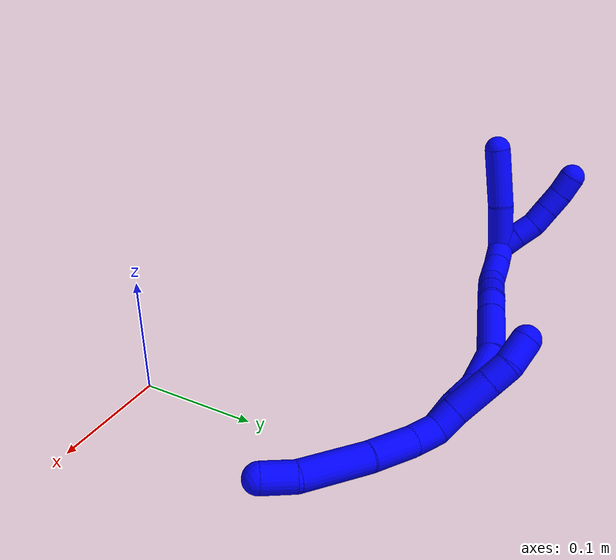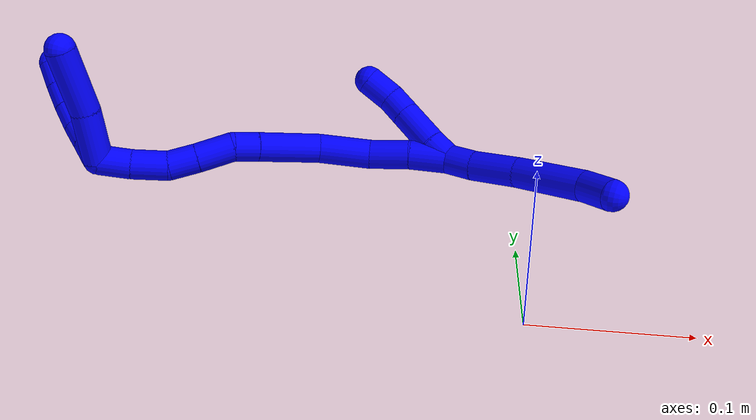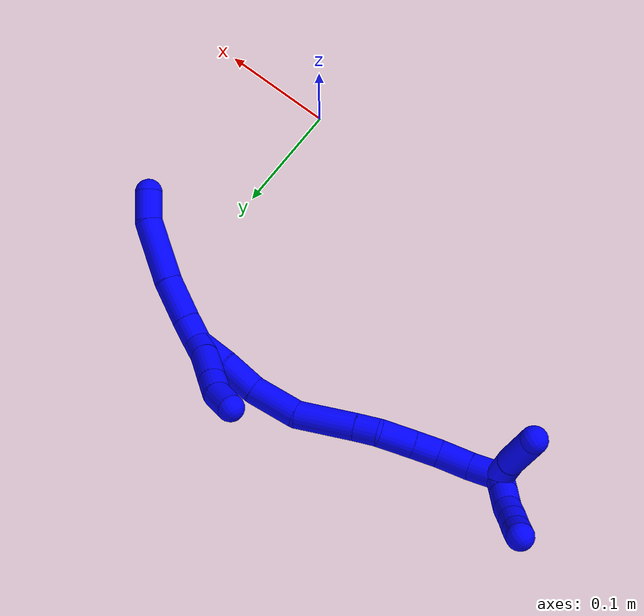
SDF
<sdf version="1.7">
 <world name="default">
  <model name="1">
   <static>0</static>
   <link name="1">
    <collision name="collision-cylinder-e_1_2_8">
     <pose>-0.000603 -5.9e-05 -0.012209 3.13675 -0.049349 -2.94613</pose>
     <geometry><cylinder><radius>0.0125</radius><length>0.024447</length></cylinder></geometry>
     <surface>
      <friction><ode><mu>1.16</mu><mu2>1.16</mu2><slip1>0</slip1><slip2>0</slip2></ode></friction>
      <contact><ode><kp>1e+06</kp><kd>1</kd><max_vel>0</max_vel><min_depth>0.001</min_depth></ode></contact>
     </surface>
    </collision>
    <visual name="visual-cylinder-e_1_2_8">
     <pose>-0.000603 -5.9e-05 -0.012209 3.13675 -0.049349 -2.94613</pose>
     <geometry><cylinder><radius>0.0125</radius><length>0.024447</length></cylinder></geometry>
     <material><ambient>0 0 1 1</ambient></material>
    </visual>
    <collision name="collision-cylinder-e_2_8_9">
     <pose>-0.002507 -0.002538 -0.043942 3.0183 -0.066039 -0.982697</pose>
     <geometry><cylinder><radius>0.0125</radius><length>0.039435</length></cylinder></geometry>
     <surface>
      <friction><ode><mu>1.16</mu><mu2>1.16</mu2><slip1>0</slip1><slip2>0</slip2></ode></friction>
      <contact><ode><kp>1e+06</kp><kd>1</kd><max_vel>0</max_vel><min_depth>0.001</min_depth></ode></contact>
     </surface>
    </collision>
    <visual name="visual-cylinder-e_2_8_9">
     <pose>-0.002507 -0.002538 -0.043942 3.0183 -0.066039 -0.982697</pose>
     <geometry><cylinder><radius>0.0125</radius><length>0.039435</length></cylinder></geometry>
     <material><ambient>0 0 1 1</ambient></material>
    </visual>
    <collision name="collision-cylinder-e_3_9_10">
     <pose>-0.009109 -0.008553 -0.09205 3.01647 -0.181962 -1.93819</pose>
     <geometry><cylinder><radius>0.0125</radius><length>0.058582</length></cylinder></geometry>
     <surface>
      <friction><ode><mu>1.16</mu><mu2>1.16</mu2><slip1>0</slip1><slip2>0</slip2></ode></friction>
      <contact><ode><kp>1e+06</kp><kd>1</kd><max_vel>0</max_vel><min_depth>0.001</min_depth></ode></contact>
     </surface>
    </collision>
    <visual name="visual-cylinder-e_3_9_10">
     <pose>-0.009109 -0.008553 -0.09205 3.01647 -0.181962 -1.93819</pose>
     <geometry><cylinder><radius>0.0125</radius><length>0.058582</length></cylinder></geometry>
     <material><ambient>0 0 1 1</ambient></material>
    </visual>
    <collision name="collision-cylinder-e_4_10_6">
     <pose>-0.020778 -0.014212 -0.132662 2.97164 -0.480924 -2.47291</pose>
     <geometry><cylinder><radius>0.0125</radius><length>0.027536</length></cylinder></geometry>
     <surface>
      <friction><ode><mu>1.16</mu><mu2>1.16</mu2><slip1>0</slip1><slip2>0</slip2></ode></friction>
      <contact><ode><kp>1e+06</kp><kd>1</kd><max_vel>0</max_vel><min_depth>0.001</min_depth></ode></contact>
     </surface>
    </collision>
    <visual name="visual-cylinder-e_4_10_6">
     <pose>-0.020778 -0.014212 -0.132662 2.97164 -0.480924 -2.47291</pose>
     <geometry><cylinder><radius>0.0125</radius><length>0.027536</length></cylinder></geometry>
     <material><ambient>0 0 1 1</ambient></material>
    </visual>
    <collision name="collision-cylinder-e_1_2_11">
     <pose>0.001114 -0.005154 0.008678 0.535989 0.10989 0.030204</pose>
     <geometry><cylinder><radius>0.0125</radius><length>0.020309</length></cylinder></geometry>
     <surface>
      <friction><ode><mu>1.16</mu><mu2>1.16</mu2><slip1>0</slip1><slip2>0</slip2></ode></friction>
      <contact><ode><kp>1e+06</kp><kd>1</kd><max_vel>0</max_vel><min_depth>0.001</min_depth></ode></contact>
     </surface>
    </collision>
    <visual name="visual-cylinder-e_1_2_11">
     <pose>0.001114 -0.005154 0.008678 0.535989 0.10989 0.030204</pose>
     <geometry><cylinder><radius>0.0125</radius><length>0.020309</length></cylinder></geometry>
     <material><ambient>0 0 1 1</ambient></material>
    </visual>
    <collision name="collision-cylinder-e_2_11_12">
     <pose>0.006074 -0.018916 0.031913 0.533964 0.22365 0.061408</pose>
     <geometry><cylinder><radius>0.0125</radius><length>0.034688</length></cylinder></geometry>
     <surface>
      <friction><ode><mu>1.16</mu><mu2>1.16</mu2><slip1>0</slip1><slip2>0</slip2></ode></friction>
      <contact><ode><kp>1e+06</kp><kd>1</kd><max_vel>0</max_vel><min_depth>0.001</min_depth></ode></contact>
     </surface>
    </collision>
    <visual name="visual-cylinder-e_2_11_12">
     <pose>0.006074 -0.018916 0.031913 0.533964 0.22365 0.061408</pose>
     <geometry><cylinder><radius>0.0125</radius><length>0.034688</length></cylinder></geometry>
     <material><ambient>0 0 1 1</ambient></material>
    </visual>
    <collision name="collision-cylinder-e_3_12_13">
     <pose>0.012109 -0.032504 0.054896 0.533913 0.219929 0.060372</pose>
     <geometry><cylinder><radius>0.0125</radius><length>0.020058</length></cylinder></geometry>
     <surface>
      <friction><ode><mu>1.16</mu><mu2>1.16</mu2><slip1>0</slip1><slip2>0</slip2></ode></friction>
      <contact><ode><kp>1e+06</kp><kd>1</kd><max_vel>0</max_vel><min_depth>0.001</min_depth></ode></contact>
     </surface>
    </collision>
    <visual name="visual-cylinder-e_3_12_13">
     <pose>0.012109 -0.032504 0.054896 0.533913 0.219929 0.060372</pose>
     <geometry><cylinder><radius>0.0125</radius><length>0.020058</length></cylinder></geometry>
     <material><ambient>0 0 1 1</ambient></material>
    </visual>
    <collision name="collision-cylinder-e_4_13_5">
     <pose>0.013193 -0.043976 0.073915 0.549731 -0.08856 -0.024989</pose>
     <geometry><cylinder><radius>0.0125</radius><length>0.024946</length></cylinder></geometry>
     <surface>
      <friction><ode><mu>1.16</mu><mu2>1.16</mu2><slip1>0</slip1><slip2>0</slip2></ode></friction>
      <contact><ode><kp>1e+06</kp><kd>1</kd><max_vel>0</max_vel><min_depth>0.001</min_depth></ode></contact>
     </surface>
    </collision>
    <visual name="visual-cylinder-e_4_13_5">
     <pose>0.013193 -0.043976 0.073915 0.549731 -0.08856 -0.024989</pose>
     <geometry><cylinder><radius>0.0125</radius><length>0.024946</length></cylinder></geometry>
     <material><ambient>0 0 1 1</ambient></material>
    </visual>
    <collision name="collision-cylinder-e_1_2_14">
     <pose>-0.005904 -0.000468 0.01517 0.030828 -0.370967 -0.005785</pose>
     <geometry><cylinder><radius>0.0125</radius><length>0.032571</length></cylinder></geometry>
     <surface>
      <friction><ode><mu>1.16</mu><mu2>1.16</mu2><slip1>0</slip1><slip2>0</slip2></ode></friction>
      <contact><ode><kp>1e+06</kp><kd>1</kd><max_vel>0</max_vel><min_depth>0.001</min_depth></ode></contact>
     </surface>
    </collision>
    <visual name="visual-cylinder-e_1_2_14">
     <pose>-0.005904 -0.000468 0.01517 0.030828 -0.370967 -0.005785</pose>
     <geometry><cylinder><radius>0.0125</radius><length>0.032571</length></cylinder></geometry>
     <material><ambient>0 0 1 1</ambient></material>
    </visual>
    <collision name="collision-cylinder-e_2_14_15">
     <pose>-0.017346 0.000628 0.046356 -0.097348 -0.331502 0.016297</pose>
     <geometry><cylinder><radius>0.0125</radius><length>0.034036</length></cylinder></geometry>
     <surface>
      <friction><ode><mu>1.16</mu><mu2>1.16</mu2><slip1>0</slip1><slip2>0</slip2></ode></friction>
      <contact><ode><kp>1e+06</kp><kd>1</kd><max_vel>0</max_vel><min_depth>0.001</min_depth></ode></contact>
     </surface>
    </collision>
    <visual name="visual-cylinder-e_2_14_15">
     <pose>-0.017346 0.000628 0.046356 -0.097348 -0.331502 0.016297</pose>
     <geometry><cylinder><radius>0.0125</radius><length>0.034036</length></cylinder></geometry>
     <material><ambient>0 0 1 1</ambient></material>
    </visual>
    <collision name="collision-cylinder-e_3_15_16">
     <pose>-0.033292 0.000191 0.082086 0.101147 -0.483578 -0.024964</pose>
     <geometry><cylinder><radius>0.0125</radius><length>0.044764</length></cylinder></geometry>
     <surface>
      <friction><ode><mu>1.16</mu><mu2>1.16</mu2><slip1>0</slip1><slip2>0</slip2></ode></friction>
      <contact><ode><kp>1e+06</kp><kd>1</kd><max_vel>0</max_vel><min_depth>0.001</min_depth></ode></contact>
     </surface>
    </collision>
    <visual name="visual-cylinder-e_3_15_16">
     <pose>-0.033292 0.000191 0.082086 0.101147 -0.483578 -0.024964</pose>
     <geometry><cylinder><radius>0.0125</radius><length>0.044764</length></cylinder></geometry>
     <material><ambient>0 0 1 1</ambient></material>
    </visual>
    <collision name="collision-cylinder-e_4_16_17">
     <pose>-0.062824 -0.005114 0.120347 0.176335 -0.79293 -0.073978</pose>
     <geometry><cylinder><radius>0.0125</radius><length>0.053692</length></cylinder></geometry>
     <surface>
      <friction><ode><mu>1.16</mu><mu2>1.16</mu2><slip1>0</slip1><slip2>0</slip2></ode></friction>
      <contact><ode><kp>1e+06</kp><kd>1</kd><max_vel>0</max_vel><min_depth>0.001</min_depth></ode></contact>
     </surface>
    </collision>
    <visual name="visual-cylinder-e_4_16_17">
     <pose>-0.062824 -0.005114 0.120347 0.176335 -0.79293 -0.073978</pose>
     <geometry><cylinder><radius>0.0125</radius><length>0.053692</length></cylinder></geometry>
     <material><ambient>0 0 1 1</ambient></material>
    </visual>
    <collision name="collision-cylinder-e_5_17_18">
     <pose>-0.089278 -0.009493 0.14625 0.144993 -0.778344 -0.059546</pose>
     <geometry><cylinder><radius>0.0125</radius><length>0.020877</length></cylinder></geometry>
     <surface>
      <friction><ode><mu>1.16</mu><mu2>1.16</mu2><slip1>0</slip1><slip2>0</slip2></ode></friction>
      <contact><ode><kp>1e+06</kp><kd>1</kd><max_vel>0</max_vel><min_depth>0.001</min_depth></ode></contact>
     </surface>
    </collision>
    <visual name="visual-cylinder-e_5_17_18">
     <pose>-0.089278 -0.009493 0.14625 0.144993 -0.778344 -0.059546</pose>
     <geometry><cylinder><radius>0.0125</radius><length>0.020877</length></cylinder></geometry>
     <material><ambient>0 0 1 1</ambient></material>
    </visual>
    <collision name="collision-cylinder-e_6_18_19">
     <pose>-0.107775 -0.006874 0.16434 -0.331319 -0.77719 0.136688</pose>
     <geometry><cylinder><radius>0.0125</radius><length>0.031851</length></cylinder></geometry>
     <surface>
      <friction><ode><mu>1.16</mu><mu2>1.16</mu2><slip1>0</slip1><slip2>0</slip2></ode></friction>
      <contact><ode><kp>1e+06</kp><kd>1</kd><max_vel>0</max_vel><min_depth>0.001</min_depth></ode></contact>
     </surface>
    </collision>
    <visual name="visual-cylinder-e_6_18_19">
     <pose>-0.107775 -0.006874 0.16434 -0.331319 -0.77719 0.136688</pose>
     <geometry><cylinder><radius>0.0125</radius><length>0.031851</length></cylinder></geometry>
     <material><ambient>0 0 1 1</ambient></material>
    </visual>
    <collision name="collision-cylinder-e_7_19_20">
     <pose>-0.127422 -0.000816 0.183646 -0.269287 -0.761747 0.10838</pose>
     <geometry><cylinder><radius>0.0125</radius><length>0.024571</length></cylinder></geometry>
     <surface>
      <friction><ode><mu>1.16</mu><mu2>1.16</mu2><slip1>0</slip1><slip2>0</slip2></ode></friction>
      <contact><ode><kp>1e+06</kp><kd>1</kd><max_vel>0</max_vel><min_depth>0.001</min_depth></ode></contact>
     </surface>
    </collision>
    <visual name="visual-cylinder-e_7_19_20">
     <pose>-0.127422 -0.000816 0.183646 -0.269287 -0.761747 0.10838</pose>
     <geometry><cylinder><radius>0.0125</radius><length>0.024571</length></cylinder></geometry>
     <material><ambient>0 0 1 1</ambient></material>
    </visual>
    <collision name="collision-cylinder-e_8_20_21">
     <pose>-0.14491 0.00039 0.204557 0.093671 -0.628452 -0.030462</pose>
     <geometry><cylinder><radius>0.0125</radius><length>0.030648</length></cylinder></geometry>
     <surface>
      <friction><ode><mu>1.16</mu><mu2>1.16</mu2><slip1>0</slip1><slip2>0</slip2></ode></friction>
      <contact><ode><kp>1e+06</kp><kd>1</kd><max_vel>0</max_vel><min_depth>0.001</min_depth></ode></contact>
     </surface>
    </collision>
    <visual name="visual-cylinder-e_8_20_21">
     <pose>-0.14491 0.00039 0.204557 0.093671 -0.628452 -0.030462</pose>
     <geometry><cylinder><radius>0.0125</radius><length>0.030648</length></cylinder></geometry>
     <material><ambient>0 0 1 1</ambient></material>
    </visual>
    <collision name="collision-cylinder-e_9_21_1">
     <pose>-0.161946 -0.003341 0.227439 0.239263 -0.637013 -0.07923</pose>
     <geometry><cylinder><radius>0.0125</radius><length>0.02699</length></cylinder></geometry>
     <surface>
      <friction><ode><mu>1.16</mu><mu2>1.16</mu2><slip1>0</slip1><slip2>0</slip2></ode></friction>
      <contact><ode><kp>1e+06</kp><kd>1</kd><max_vel>0</max_vel><min_depth>0.001</min_depth></ode></contact>
     </surface>
    </collision>
    <visual name="visual-cylinder-e_9_21_1">
     <pose>-0.161946 -0.003341 0.227439 0.239263 -0.637013 -0.07923</pose>
     <geometry><cylinder><radius>0.0125</radius><length>0.02699</length></cylinder></geometry>
     <material><ambient>0 0 1 1</ambient></material>
    </visual>
    <collision name="collision-cylinder-e_1_1_22">
     <pose>-0.172299 -0.027846 0.239983 1.47965 -0.105193 -0.096032</pose>
     <geometry><cylinder><radius>0.0125</radius><length>0.044297</length></cylinder></geometry>
     <surface>
      <friction><ode><mu>1.16</mu><mu2>1.16</mu2><slip1>0</slip1><slip2>0</slip2></ode></friction>
      <contact><ode><kp>1e+06</kp><kd>1</kd><max_vel>0</max_vel><min_depth>0.001</min_depth></ode></contact>
     </surface>
    </collision>
    <visual name="visual-cylinder-e_1_1_22">
     <pose>-0.172299 -0.027846 0.239983 1.47965 -0.105193 -0.096032</pose>
     <geometry><cylinder><radius>0.0125</radius><length>0.044297</length></cylinder></geometry>
     <material><ambient>0 0 1 1</ambient></material>
    </visual>
    <collision name="collision-cylinder-e_2_22_4">
     <pose>-0.180827 -0.076702 0.245519 1.44039 -0.224601 -0.197258</pose>
     <geometry><cylinder><radius>0.0125</radius><length>0.055703</length></cylinder></geometry>
     <surface>
      <friction><ode><mu>1.16</mu><mu2>1.16</mu2><slip1>0</slip1><slip2>0</slip2></ode></friction>
      <contact><ode><kp>1e+06</kp><kd>1</kd><max_vel>0</max_vel><min_depth>0.001</min_depth></ode></contact>
     </surface>
    </collision>
    <visual name="visual-cylinder-e_2_22_4">
     <pose>-0.180827 -0.076702 0.245519 1.44039 -0.224601 -0.197258</pose>
     <geometry><cylinder><radius>0.0125</radius><length>0.055703</length></cylinder></geometry>
     <material><ambient>0 0 1 1</ambient></material>
    </visual>
    <collision name="collision-cylinder-e_1_1_23">
     <pose>-0.166672 -0.010874 0.246008 0.553555 0.336448 0.096411</pose>
     <geometry><cylinder><radius>0.0125</radius><length>0.02</length></cylinder></geometry>
     <surface>
      <friction><ode><mu>1.16</mu><mu2>1.16</mu2><slip1>0</slip1><slip2>0</slip2></ode></friction>
      <contact><ode><kp>1e+06</kp><kd>1</kd><max_vel>0</max_vel><min_depth>0.001</min_depth></ode></contact>
     </surface>
    </collision>
    <visual name="visual-cylinder-e_1_1_23">
     <pose>-0.166672 -0.010874 0.246008 0.553555 0.336448 0.096411</pose>
     <geometry><cylinder><radius>0.0125</radius><length>0.02</length></cylinder></geometry>
     <material><ambient>0 0 1 1</ambient></material>
    </visual>
    <collision name="collision-cylinder-e_2_23_24">
     <pose>-0.159939 -0.020411 0.262241 0.508676 0.350281 0.09194</pose>
     <geometry><cylinder><radius>0.0125</radius><length>0.02</length></cylinder></geometry>
     <surface>
      <friction><ode><mu>1.16</mu><mu2>1.16</mu2><slip1>0</slip1><slip2>0</slip2></ode></friction>
      <contact><ode><kp>1e+06</kp><kd>1</kd><max_vel>0</max_vel><min_depth>0.001</min_depth></ode></contact>
     </surface>
    </collision>
    <visual name="visual-cylinder-e_2_23_24">
     <pose>-0.159939 -0.020411 0.262241 0.508676 0.350281 0.09194</pose>
     <geometry><cylinder><radius>0.0125</radius><length>0.02</length></cylinder></geometry>
     <material><ambient>0 0 1 1</ambient></material>
    </visual>
    <collision name="collision-cylinder-e_3_24_25">
     <pose>-0.154234 -0.031975 0.277225 0.800557 0.229314 0.097378</pose>
     <geometry><cylinder><radius>0.0125</radius><length>0.02</length></cylinder></geometry>
     <surface>
      <friction><ode><mu>1.16</mu><mu2>1.16</mu2><slip1>0</slip1><slip2>0</slip2></ode></friction>
      <contact><ode><kp>1e+06</kp><kd>1</kd><max_vel>0</max_vel><min_depth>0.001</min_depth></ode></contact>
     </surface>
    </collision>
    <visual name="visual-cylinder-e_3_24_25">
     <pose>-0.154234 -0.031975 0.277225 0.800557 0.229314 0.097378</pose>
     <geometry><cylinder><radius>0.0125</radius><length>0.02</length></cylinder></geometry>
     <material><ambient>0 0 1 1</ambient></material>
    </visual>
    <collision name="collision-cylinder-e_4_25_26">
     <pose>-0.149319 -0.046146 0.290444 0.8399 0.267325 0.119936</pose>
     <geometry><cylinder><radius>0.0125</radius><length>0.02</length></cylinder></geometry>
     <surface>
      <friction><ode><mu>1.16</mu><mu2>1.16</mu2><slip1>0</slip1><slip2>0</slip2></ode></friction>
      <contact><ode><kp>1e+06</kp><kd>1</kd><max_vel>0</max_vel><min_depth>0.001</min_depth></ode></contact>
     </surface>
    </collision>
    <visual name="visual-cylinder-e_4_25_26">
     <pose>-0.149319 -0.046146 0.290444 0.8399 0.267325 0.119936</pose>
     <geometry><cylinder><radius>0.0125</radius><length>0.02</length></cylinder></geometry>
     <material><ambient>0 0 1 1</ambient></material>
    </visual>
    <collision name="collision-cylinder-e_5_26_3">
     <pose>-0.144455 -0.061402 0.302347 0.975894 0.224149 0.119327</pose>
     <geometry><cylinder><radius>0.0125</radius><length>0.02</length></cylinder></geometry>
     <surface>
      <friction><ode><mu>1.16</mu><mu2>1.16</mu2><slip1>0</slip1><slip2>0</slip2></ode></friction>
      <contact><ode><kp>1e+06</kp><kd>1</kd><max_vel>0</max_vel><min_depth>0.001</min_depth></ode></contact>
     </surface>
    </collision>
    <visual name="visual-cylinder-e_5_26_3">
     <pose>-0.144455 -0.061402 0.302347 0.975894 0.224149 0.119327</pose>
     <geometry><cylinder><radius>0.0125</radius><length>0.02</length></cylinder></geometry>
     <material><ambient>0 0 1 1</ambient></material>
    </visual>
    <collision name="collision-sphere-3">
     <pose>-0.142232 -0.069477 0.307811 0 -0 0</pose>
     <geometry><sphere><radius>0.0125</radius></sphere></geometry>
     <surface>
      <friction><ode><mu>1.16</mu><mu2>1.16</mu2><slip1>0</slip1><slip2>0</slip2></ode></friction>
      <contact><ode><kp>1e+06</kp><kd>1</kd><max_vel>0</max_vel><min_depth>0.001</min_depth></ode></contact>
     </surface>
    </collision>
    <visual name="visual-sphere-3">
     <pose>-0.142232 -0.069477 0.307811 0 -0 0</pose>
     <geometry><sphere><radius>0.0125</radius></sphere></geometry>
     <material><ambient>0 0 1 1</ambient></material>
    </visual>
    <collision name="collision-sphere-26">
     <pose>-0.146678 -0.053327 0.296883 0 -0 0</pose>
     <geometry><sphere><radius>0.0125</radius></sphere></geometry>
     <surface>
      <friction><ode><mu>1.16</mu><mu2>1.16</mu2><slip1>0</slip1><slip2>0</slip2></ode></friction>
      <contact><ode><kp>1e+06</kp><kd>1</kd><max_vel>0</max_vel><min_depth>0.001</min_depth></ode></contact>
     </surface>
    </collision>
    <visual name="visual-sphere-26">
     <pose>-0.146678 -0.053327 0.296883 0 -0 0</pose>
     <geometry><sphere><radius>0.0125</radius></sphere></geometry>
     <material><ambient>0 0 1 1</ambient></material>
    </visual>
    <collision name="collision-sphere-25">
     <pose>-0.151961 -0.038964 0.284006 0 -0 0</pose>
     <geometry><sphere><radius>0.0125</radius></sphere></geometry>
     <surface>
      <friction><ode><mu>1.16</mu><mu2>1.16</mu2><slip1>0</slip1><slip2>0</slip2></ode></friction>
      <contact><ode><kp>1e+06</kp><kd>1</kd><max_vel>0</max_vel><min_depth>0.001</min_depth></ode></contact>
     </surface>
    </collision>
    <visual name="visual-sphere-25">
     <pose>-0.151961 -0.038964 0.284006 0 -0 0</pose>
     <geometry><sphere><radius>0.0125</radius></sphere></geometry>
     <material><ambient>0 0 1 1</ambient></material>
    </visual>
    <collision name="collision-sphere-24">
     <pose>-0.156507 -0.024985 0.270444 0 -0 0</pose>
     <geometry><sphere><radius>0.0125</radius></sphere></geometry>
     <surface>
      <friction><ode><mu>1.16</mu><mu2>1.16</mu2><slip1>0</slip1><slip2>0</slip2></ode></friction>
      <contact><ode><kp>1e+06</kp><kd>1</kd><max_vel>0</max_vel><min_depth>0.001</min_depth></ode></contact>
     </surface>
    </collision>
    <visual name="visual-sphere-24">
     <pose>-0.156507 -0.024985 0.270444 0 -0 0</pose>
     <geometry><sphere><radius>0.0125</radius></sphere></geometry>
     <material><ambient>0 0 1 1</ambient></material>
    </visual>
    <collision name="collision-sphere-23">
     <pose>-0.16337 -0.015836 0.254037 0 -0 0</pose>
     <geometry><sphere><radius>0.0125</radius></sphere></geometry>
     <surface>
      <friction><ode><mu>1.16</mu><mu2>1.16</mu2><slip1>0</slip1><slip2>0</slip2></ode></friction>
      <contact><ode><kp>1e+06</kp><kd>1</kd><max_vel>0</max_vel><min_depth>0.001</min_depth></ode></contact>
     </surface>
    </collision>
    <visual name="visual-sphere-23">
     <pose>-0.16337 -0.015836 0.254037 0 -0 0</pose>
     <geometry><sphere><radius>0.0125</radius></sphere></geometry>
     <material><ambient>0 0 1 1</ambient></material>
    </visual>
    <collision name="collision-sphere-4">
     <pose>-0.18703 -0.103624 0.249049 0 -0 0</pose>
     <geometry><sphere><radius>0.0125</radius></sphere></geometry>
     <surface>
      <friction><ode><mu>1.16</mu><mu2>1.16</mu2><slip1>0</slip1><slip2>0</slip2></ode></friction>
      <contact><ode><kp>1e+06</kp><kd>1</kd><max_vel>0</max_vel><min_depth>0.001</min_depth></ode></contact>
     </surface>
    </collision>
    <visual name="visual-sphere-4">
     <pose>-0.18703 -0.103624 0.249049 0 -0 0</pose>
     <geometry><sphere><radius>0.0125</radius></sphere></geometry>
     <material><ambient>0 0 1 1</ambient></material>
    </visual>
    <collision name="collision-sphere-22">
     <pose>-0.174624 -0.049781 0.241988 0 -0 0</pose>
     <geometry><sphere><radius>0.0125</radius></sphere></geometry>
     <surface>
      <friction><ode><mu>1.16</mu><mu2>1.16</mu2><slip1>0</slip1><slip2>0</slip2></ode></friction>
      <contact><ode><kp>1e+06</kp><kd>1</kd><max_vel>0</max_vel><min_depth>0.001</min_depth></ode></contact>
     </surface>
    </collision>
    <visual name="visual-sphere-22">
     <pose>-0.174624 -0.049781 0.241988 0 -0 0</pose>
     <geometry><sphere><radius>0.0125</radius></sphere></geometry>
     <material><ambient>0 0 1 1</ambient></material>
    </visual>
    <collision name="collision-sphere-1">
     <pose>-0.169973 -0.005911 0.237978 0 -0 0</pose>
     <geometry><sphere><radius>0.0125</radius></sphere></geometry>
     <surface>
      <friction><ode><mu>1.16</mu><mu2>1.16</mu2><slip1>0</slip1><slip2>0</slip2></ode></friction>
      <contact><ode><kp>1e+06</kp><kd>1</kd><max_vel>0</max_vel><min_depth>0.001</min_depth></ode></contact>
     </surface>
    </collision>
    <visual name="visual-sphere-1">
     <pose>-0.169973 -0.005911 0.237978 0 -0 0</pose>
     <geometry><sphere><radius>0.0125</radius></sphere></geometry>
     <material><ambient>0 0 1 1</ambient></material>
    </visual>
    <collision name="collision-sphere-21">
     <pose>-0.153919 -0.00077 0.216899 0 -0 0</pose>
     <geometry><sphere><radius>0.0125</radius></sphere></geometry>
     <surface>
      <friction><ode><mu>1.16</mu><mu2>1.16</mu2><slip1>0</slip1><slip2>0</slip2></ode></friction>
      <contact><ode><kp>1e+06</kp><kd>1</kd><max_vel>0</max_vel><min_depth>0.001</min_depth></ode></contact>
     </surface>
    </collision>
    <visual name="visual-sphere-21">
     <pose>-0.153919 -0.00077 0.216899 0 -0 0</pose>
     <geometry><sphere><radius>0.0125</radius></sphere></geometry>
     <material><ambient>0 0 1 1</ambient></material>
    </visual>
    <collision name="collision-sphere-11">
     <pose>0.002227 -0.010309 0.017355 0 -0 0</pose>
     <geometry><sphere><radius>0.0125</radius></sphere></geometry>
     <surface>
      <friction><ode><mu>1.16</mu><mu2>1.16</mu2><slip1>0</slip1><slip2>0</slip2></ode></friction>
      <contact><ode><kp>1e+06</kp><kd>1</kd><max_vel>0</max_vel><min_depth>0.001</min_depth></ode></contact>
     </surface>
    </collision>
    <visual name="visual-sphere-11">
     <pose>0.002227 -0.010309 0.017355 0 -0 0</pose>
     <geometry><sphere><radius>0.0125</radius></sphere></geometry>
     <material><ambient>0 0 1 1</ambient></material>
    </visual>
    <collision name="collision-sphere-6">
     <pose>-0.027147 -0.016277 -0.144693 0 -0 0</pose>
     <geometry><sphere><radius>0.0125</radius></sphere></geometry>
     <surface>
      <friction><ode><mu>1.16</mu><mu2>1.16</mu2><slip1>0</slip1><slip2>0</slip2></ode></friction>
      <contact><ode><kp>1e+06</kp><kd>1</kd><max_vel>0</max_vel><min_depth>0.001</min_depth></ode></contact>
     </surface>
    </collision>
    <visual name="visual-sphere-6">
     <pose>-0.027147 -0.016277 -0.144693 0 -0 0</pose>
     <geometry><sphere><radius>0.0125</radius></sphere></geometry>
     <material><ambient>0 0 1 1</ambient></material>
    </visual>
    <collision name="collision-sphere-10">
     <pose>-0.014409 -0.012148 -0.120632 0 -0 0</pose>
     <geometry><sphere><radius>0.0125</radius></sphere></geometry>
     <surface>
      <friction><ode><mu>1.16</mu><mu2>1.16</mu2><slip1>0</slip1><slip2>0</slip2></ode></friction>
      <contact><ode><kp>1e+06</kp><kd>1</kd><max_vel>0</max_vel><min_depth>0.001</min_depth></ode></contact>
     </surface>
    </collision>
    <visual name="visual-sphere-10">
     <pose>-0.014409 -0.012148 -0.120632 0 -0 0</pose>
     <geometry><sphere><radius>0.0125</radius></sphere></geometry>
     <material><ambient>0 0 1 1</ambient></material>
    </visual>
    <collision name="collision-sphere-9">
     <pose>-0.003808 -0.004958 -0.063468 0 -0 0</pose>
     <geometry><sphere><radius>0.0125</radius></sphere></geometry>
     <surface>
      <friction><ode><mu>1.16</mu><mu2>1.16</mu2><slip1>0</slip1><slip2>0</slip2></ode></friction>
      <contact><ode><kp>1e+06</kp><kd>1</kd><max_vel>0</max_vel><min_depth>0.001</min_depth></ode></contact>
     </surface>
    </collision>
    <visual name="visual-sphere-9">
     <pose>-0.003808 -0.004958 -0.063468 0 -0 0</pose>
     <geometry><sphere><radius>0.0125</radius></sphere></geometry>
     <material><ambient>0 0 1 1</ambient></material>
    </visual>
    <collision name="collision-sphere-2">
     <geometry><sphere><radius>0.0125</radius></sphere></geometry>
     <surface>
      <friction><ode><mu>1.16</mu><mu2>1.16</mu2><slip1>0</slip1><slip2>0</slip2></ode></friction>
      <contact><ode><kp>1e+06</kp><kd>1</kd><max_vel>0</max_vel><min_depth>0.001</min_depth></ode></contact>
     </surface>
    </collision>
    <visual name="visual-sphere-2">
     <geometry><sphere><radius>0.0125</radius></sphere></geometry>
     <material><ambient>0 0 1 1</ambient></material>
    </visual>
    <collision name="collision-sphere-19">
     <pose>-0.118943 -0.003181 0.175076 0 -0 0</pose>
     <geometry><sphere><radius>0.0125</radius></sphere></geometry>
     <surface>
      <friction><ode><mu>1.16</mu><mu2>1.16</mu2><slip1>0</slip1><slip2>0</slip2></ode></friction>
      <contact><ode><kp>1e+06</kp><kd>1</kd><max_vel>0</max_vel><min_depth>0.001</min_depth></ode></contact>
     </surface>
    </collision>
    <visual name="visual-sphere-19">
     <pose>-0.118943 -0.003181 0.175076 0 -0 0</pose>
     <geometry><sphere><radius>0.0125</radius></sphere></geometry>
     <material><ambient>0 0 1 1</ambient></material>
    </visual>
    <collision name="collision-sphere-8">
     <pose>-0.001206 -0.000118 -0.024417 0 -0 0</pose>
     <geometry><sphere><radius>0.0125</radius></sphere></geometry>
     <surface>
      <friction><ode><mu>1.16</mu><mu2>1.16</mu2><slip1>0</slip1><slip2>0</slip2></ode></friction>
      <contact><ode><kp>1e+06</kp><kd>1</kd><max_vel>0</max_vel><min_depth>0.001</min_depth></ode></contact>
     </surface>
    </collision>
    <visual name="visual-sphere-8">
     <pose>-0.001206 -0.000118 -0.024417 0 -0 0</pose>
     <geometry><sphere><radius>0.0125</radius></sphere></geometry>
     <material><ambient>0 0 1 1</ambient></material>
    </visual>
    <collision name="collision-sphere-12">
     <pose>0.009921 -0.027523 0.046471 0 -0 0</pose>
     <geometry><sphere><radius>0.0125</radius></sphere></geometry>
     <surface>
      <friction><ode><mu>1.16</mu><mu2>1.16</mu2><slip1>0</slip1><slip2>0</slip2></ode></friction>
      <contact><ode><kp>1e+06</kp><kd>1</kd><max_vel>0</max_vel><min_depth>0.001</min_depth></ode></contact>
     </surface>
    </collision>
    <visual name="visual-sphere-12">
     <pose>0.009921 -0.027523 0.046471 0 -0 0</pose>
     <geometry><sphere><radius>0.0125</radius></sphere></geometry>
     <material><ambient>0 0 1 1</ambient></material>
    </visual>
    <collision name="collision-sphere-13">
     <pose>0.014296 -0.037485 0.063321 0 -0 0</pose>
     <geometry><sphere><radius>0.0125</radius></sphere></geometry>
     <surface>
      <friction><ode><mu>1.16</mu><mu2>1.16</mu2><slip1>0</slip1><slip2>0</slip2></ode></friction>
      <contact><ode><kp>1e+06</kp><kd>1</kd><max_vel>0</max_vel><min_depth>0.001</min_depth></ode></contact>
     </surface>
    </collision>
    <visual name="visual-sphere-13">
     <pose>0.014296 -0.037485 0.063321 0 -0 0</pose>
     <geometry><sphere><radius>0.0125</radius></sphere></geometry>
     <material><ambient>0 0 1 1</ambient></material>
    </visual>
    <collision name="collision-sphere-5">
     <pose>0.01209 -0.050467 0.084508 0 -0 0</pose>
     <geometry><sphere><radius>0.0125</radius></sphere></geometry>
     <surface>
      <friction><ode><mu>1.16</mu><mu2>1.16</mu2><slip1>0</slip1><slip2>0</slip2></ode></friction>
      <contact><ode><kp>1e+06</kp><kd>1</kd><max_vel>0</max_vel><min_depth>0.001</min_depth></ode></contact>
     </surface>
    </collision>
    <visual name="visual-sphere-5">
     <pose>0.01209 -0.050467 0.084508 0 -0 0</pose>
     <geometry><sphere><radius>0.0125</radius></sphere></geometry>
     <material><ambient>0 0 1 1</ambient></material>
    </visual>
    <collision name="collision-sphere-14">
     <pose>-0.011808 -0.000936 0.030341 0 -0 0</pose>
     <geometry><sphere><radius>0.0125</radius></sphere></geometry>
     <surface>
      <friction><ode><mu>1.16</mu><mu2>1.16</mu2><slip1>0</slip1><slip2>0</slip2></ode></friction>
      <contact><ode><kp>1e+06</kp><kd>1</kd><max_vel>0</max_vel><min_depth>0.001</min_depth></ode></contact>
     </surface>
    </collision>
    <visual name="visual-sphere-14">
     <pose>-0.011808 -0.000936 0.030341 0 -0 0</pose>
     <geometry><sphere><radius>0.0125</radius></sphere></geometry>
     <material><ambient>0 0 1 1</ambient></material>
    </visual>
    <collision name="collision-sphere-15">
     <pose>-0.022885 0.002192 0.062372 0 -0 0</pose>
     <geometry><sphere><radius>0.0125</radius></sphere></geometry>
     <surface>
      <friction><ode><mu>1.16</mu><mu2>1.16</mu2><slip1>0</slip1><slip2>0</slip2></ode></friction>
      <contact><ode><kp>1e+06</kp><kd>1</kd><max_vel>0</max_vel><min_depth>0.001</min_depth></ode></contact>
     </surface>
    </collision>
    <visual name="visual-sphere-15">
     <pose>-0.022885 0.002192 0.062372 0 -0 0</pose>
     <geometry><sphere><radius>0.0125</radius></sphere></geometry>
     <material><ambient>0 0 1 1</ambient></material>
    </visual>
    <collision name="collision-sphere-16">
     <pose>-0.043698 -0.001809 0.1018 0 -0 0</pose>
     <geometry><sphere><radius>0.0125</radius></sphere></geometry>
     <surface>
      <friction><ode><mu>1.16</mu><mu2>1.16</mu2><slip1>0</slip1><slip2>0</slip2></ode></friction>
      <contact><ode><kp>1e+06</kp><kd>1</kd><max_vel>0</max_vel><min_depth>0.001</min_depth></ode></contact>
     </surface>
    </collision>
    <visual name="visual-sphere-16">
     <pose>-0.043698 -0.001809 0.1018 0 -0 0</pose>
     <geometry><sphere><radius>0.0125</radius></sphere></geometry>
     <material><ambient>0 0 1 1</ambient></material>
    </visual>
    <collision name="collision-sphere-17">
     <pose>-0.081949 -0.008419 0.138895 0 -0 0</pose>
     <geometry><sphere><radius>0.0125</radius></sphere></geometry>
     <surface>
      <friction><ode><mu>1.16</mu><mu2>1.16</mu2><slip1>0</slip1><slip2>0</slip2></ode></friction>
      <contact><ode><kp>1e+06</kp><kd>1</kd><max_vel>0</max_vel><min_depth>0.001</min_depth></ode></contact>
     </surface>
    </collision>
    <visual name="visual-sphere-17">
     <pose>-0.081949 -0.008419 0.138895 0 -0 0</pose>
     <geometry><sphere><radius>0.0125</radius></sphere></geometry>
     <material><ambient>0 0 1 1</ambient></material>
    </visual>
    <collision name="collision-sphere-18">
     <pose>-0.096607 -0.010567 0.153605 0 -0 0</pose>
     <geometry><sphere><radius>0.0125</radius></sphere></geometry>
     <surface>
      <friction><ode><mu>1.16</mu><mu2>1.16</mu2><slip1>0</slip1><slip2>0</slip2></ode></friction>
      <contact><ode><kp>1e+06</kp><kd>1</kd><max_vel>0</max_vel><min_depth>0.001</min_depth></ode></contact>
     </surface>
    </collision>
    <visual name="visual-sphere-18">
     <pose>-0.096607 -0.010567 0.153605 0 -0 0</pose>
     <geometry><sphere><radius>0.0125</radius></sphere></geometry>
     <material><ambient>0 0 1 1</ambient></material>
    </visual>
    <collision name="collision-sphere-20">
     <pose>-0.135901 0.001549 0.192215 0 -0 0</pose>
     <geometry><sphere><radius>0.0125</radius></sphere></geometry>
     <surface>
      <friction><ode><mu>1.16</mu><mu2>1.16</mu2><slip1>0</slip1><slip2>0</slip2></ode></friction>
      <contact><ode><kp>1e+06</kp><kd>1</kd><max_vel>0</max_vel><min_depth>0.001</min_depth></ode></contact>
     </surface>
    </collision>
    <visual name="visual-sphere-20">
     <pose>-0.135901 0.001549 0.192215 0 -0 0</pose>
     <geometry><sphere><radius>0.0125</radius></sphere></geometry>
     <material><ambient>0 0 1 1</ambient></material>
    </visual>
    <inertial>
     <pose>-0.075329 -0.017602 0.109919 0 -0 0</pose>
     <mass>0.75</mass>
     <inertia><ixx>3e-05</ixx><ixy>0</ixy><ixz>0</ixz><iyy>2.5e-05</iyy><iyz>0</iyz><izz>9.4e-05</izz></inertia>
    </inertial>
   </link>
   <pose>-0.05079 0.241717 0.012363 -1.53256 -0.046479 1.16637</pose>
  </model>
 </world>
</sdf>
